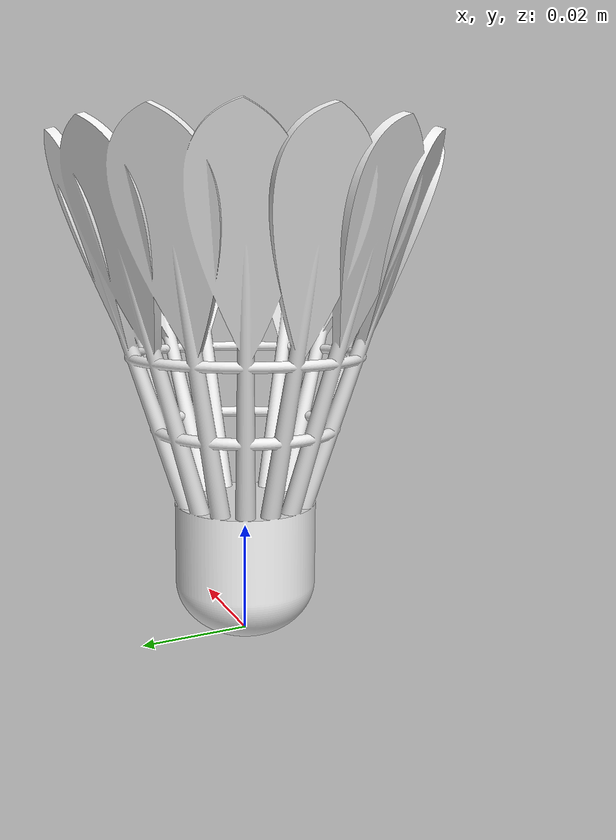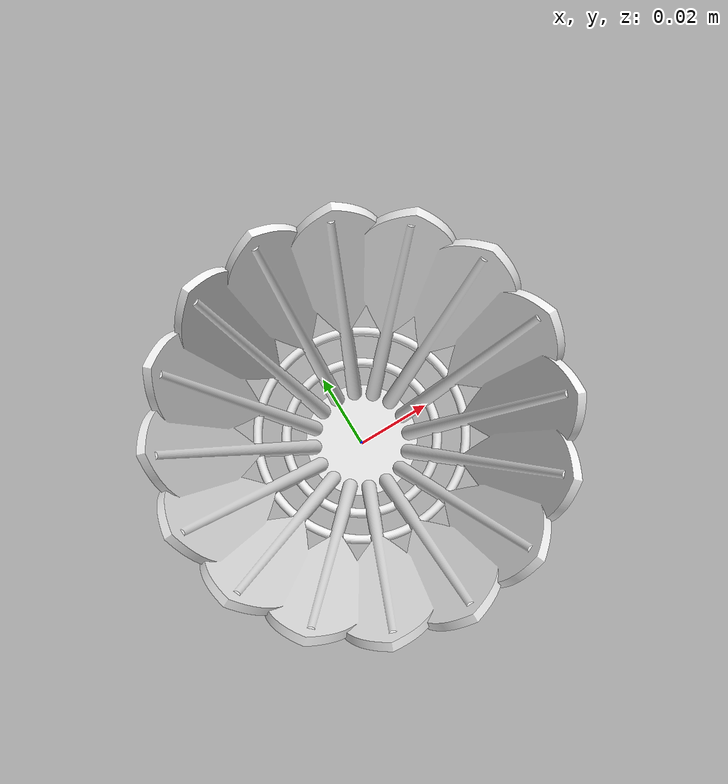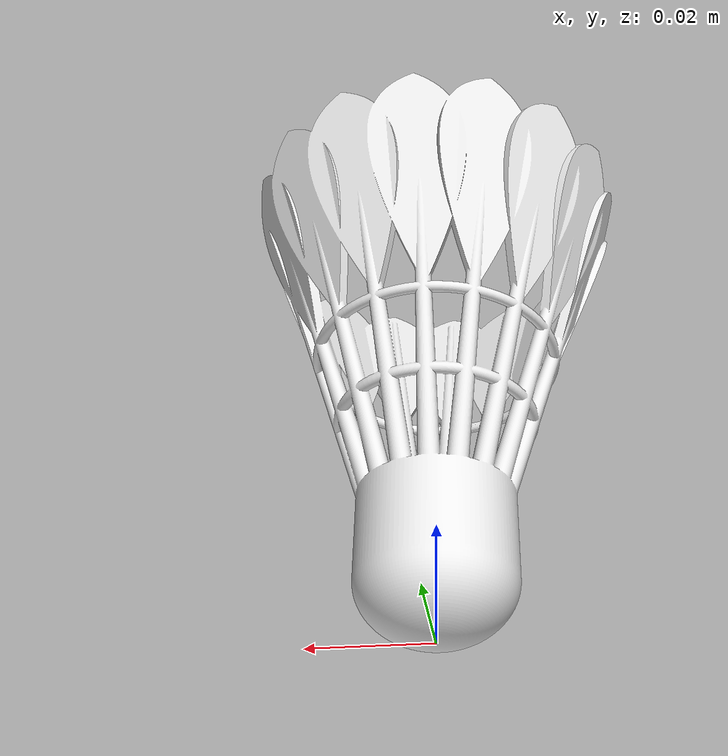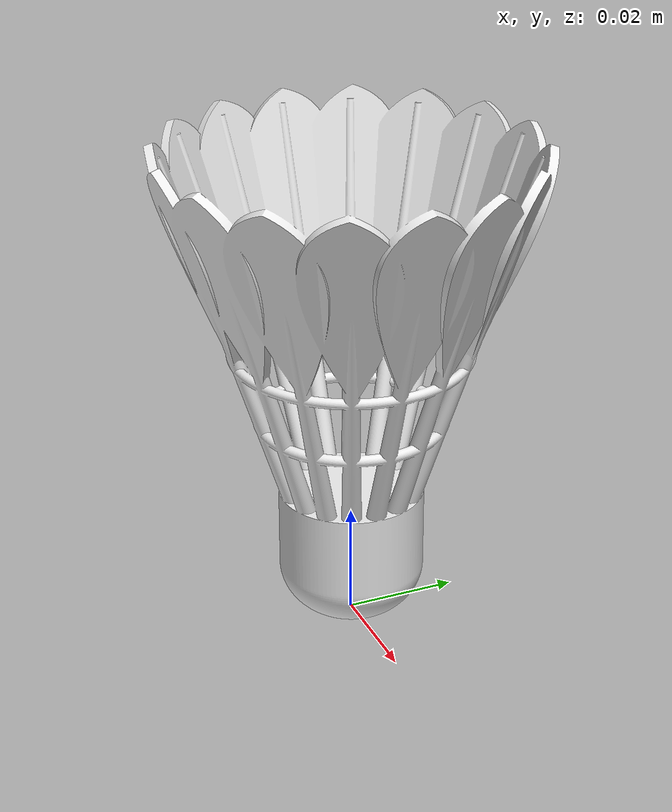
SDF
<?xml version="1.0"?>
<sdf version="1.9">
  <model name="shuttle">
    <static>false</static>
    <self_collide>false</self_collide>
    <allow_auto_disable>true</allow_auto_disable>

    <link name="shuttle_link">
      <inertial>
        <pose>0 0 0.0296 0 0 0</pose>
        <mass>0.0052</mass>
        <inertia>
          <ixx>6.8328e-6</ixx>
          <iyy>6.8328e-6</iyy>
          <izz>7.6648e-6</izz>
          <ixy>0</ixy>
          <ixz>0</ixz>
          <iyz>0</iyz>
        </inertia>
      </inertial>

      <visual name="shuttle_visual">
        <geometry>
          <mesh><uri>model://shuttle/meshes/shuttle.STL</uri></mesh>
        </geometry>
        <material>
          <ambient>0.78 0.78 0.78 1</ambient>
          <diffuse>0.92 0.92 0.92 1</diffuse>
          <specular>0.02 0.02 0.02 1</specular>
          <pbr>
            <metal>
              <metalness>0.0</metalness>
              <roughness>0.92</roughness>
            </metal>
          </pbr>
        </material>
      </visual>

      <collision name="shuttle_collision_octagonal">
        <max_contacts>8</max_contacts>
        <geometry>
          <mesh>
            <uri>model://shuttle/meshes/shuttle_collision_octagonal.stl</uri>
          </mesh>
        </geometry>
        <surface>
          <friction>
            <ode>
              <mu>0.8</mu>
              <mu2>0.8</mu2>
            </ode>
          </friction>
          <bounce>
            <restitution_coefficient>0.0</restitution_coefficient>
            <threshold>1000000.0</threshold>
          </bounce>
        </surface>
      </collision>
    </link>
  </model>
</sdf>
